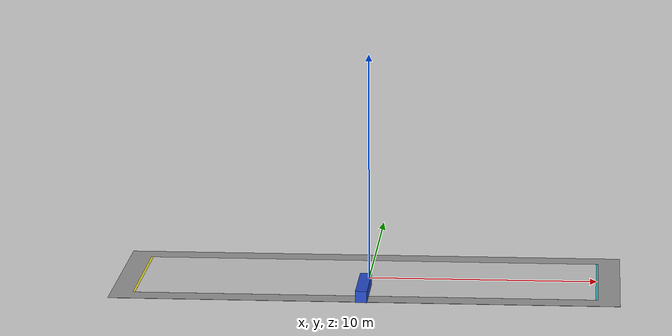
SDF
<?xml version="1.0" ?>
<sdf version="1.6">
  <world name="corredor">
    <!-- Plano de Fundo Cinza Claro com Margens -->
    <model name="corredor_fundo">
      <pose frame=''>0 0 0 0 0 0</pose>
      <static>true</static>
      <link name="corredor_link">
        <inertial>
          <mass>1</mass>
          <inertia>
            <ixx>0.1667</ixx>
            <ixy>0</ixy>
            <ixz>0</ixz>
            <iyy>0.1667</iyy>
            <iyz>0</iyz>
            <izz>0.1667</izz>
          </inertia>
        </inertial>
        <visual name="corredor_visual">
          <geometry>
            <box>
              <size>22 8 0.01</size>
            </box>
          </geometry>
          <material>
            <script>
              <uri>file://media/materials/scripts/gazebo.material</uri>
              <name>Gazebo/Gray</name>
            </script>
          </material>
        </visual>
        <collision name="corredor_collision">
          <geometry>
            <box>
              <size>22 8 0.01</size>
            </box>
          </geometry>
        </collision>
      </link>
    </model>

    <!-- Pista Central -->
    <model name="pista_central">
      <pose frame=''>0 0 0 0 0 0</pose>
      <static>true</static>
      <link name="pista_central_link">
        <inertial>
          <mass>1</mass>
          <inertia>
            <ixx>0.1667</ixx>
            <ixy>0</ixy>
            <ixz>0</ixz>
            <iyy>0.1667</iyy>
            <iyz>0</iyz>
            <izz>0.1667</izz>
          </inertia>
        </inertial>
        <visual name="pista_central_visual">
          <geometry>
            <box>
              <size>20 6 0.012</size>
            </box>
          </geometry>
          <material>
            <script>
              <uri>file://media/materials/scripts/gazebo.material</uri>
              <name>Gazebo/LightGrey</name>
            </script>
          </material>
        </visual>
        <collision name="pista_central_collision">
          <geometry>
            <box>
              <size>20 6 0.01</size>
            </box>
          </geometry>
        </collision>
      </link>
    </model>

    <!-- Linha de Início -->
    <model name="linha_inicio">
      <pose frame=''>-10 0 0.005 0 0 0</pose>
      <static>true</static>
      <link name="linha_inicio_link">
        <inertial>
          <mass>1</mass>
          <inertia>
            <ixx>0.1667</ixx>
            <ixy>0</ixy>
            <ixz>0</ixz>
            <iyy>0.1667</iyy>
            <iyz>0</iyz>
            <izz>0.1667</izz>
          </inertia>
        </inertial>
        <visual name="linha_inicio_visual">
          <geometry>
            <box>
              <size>0.1 6 0.005</size>
            </box>
          </geometry>
          <material>
            <script>
              <uri>file://media/materials/scripts/gazebo.material</uri>
              <name>Gazebo/Yellow</name>
            </script>
          </material>
        </visual>
        <collision name="linha_inicio_collision">
          <geometry>
            <box>
              <size>0.1 6 0.005</size>
            </box>
          </geometry>
        </collision>
      </link>
    </model>

    <!-- Linha de Fim -->
    <model name="linha_fim">
      <pose frame=''>10 0 0.005 0 0 0</pose>
      <static>true</static>
      <link name="linha_fim_link">
        <inertial>
          <mass>1</mass>
          <inertia>
            <ixx>0.1667</ixx>
            <ixy>0</ixy>
            <ixz>0</ixz>
            <iyy>0.1667</iyy>
            <iyz>0</iyz>
            <izz>0.1667</izz>
          </inertia>
        </inertial>
        <visual name="linha_fim_visual">
          <geometry>
            <box>
              <size>0.1 6 0.005</size>
            </box>
          </geometry>
          <material>
            <script>
              <uri>file://media/materials/scripts/gazebo.material</uri>
              <name>Gazebo/Cyan</name>
            </script>
          </material>
        </visual>
        <collision name="linha_fim_collision">
          <geometry>
            <box>
              <size>0.1 6 0.005</size>
            </box>
          </geometry>
        </collision>
      </link>
    </model>

    <!-- Caixa na lateral esquerda da pista -->
<model name="caixa_lateral_esquerda">
  <pose frame=''>0 -3.5 0.5 0 0 0</pose> <!-- Posição: centro da pista, lateral esquerda -->
  <static>true</static>
  <link name="caixa_link">
    <inertial>
      <mass>1</mass>
      <inertia>
        <ixx>0.1667</ixx>
        <ixy>0</ixy>
        <ixz>0</ixz>
        <iyy>0.1667</iyy>
        <iyz>0</iyz>
        <izz>0.1667</izz>
      </inertia>
    </inertial>
    <visual name="caixa_visual">
      <geometry>
        <box>
          <size>0.5 3 0.5</size> <!-- Dimensões: comprimento x largura x altura -->
        </box>
      </geometry>
      <material>
        <script>
          <uri>file://media/materials/scripts/gazebo.material</uri>
          <name>Gazebo/Blue</name> <!-- Cor azul para visualização clara -->
        </script>
      </material>
    </visual>
    <collision name="caixa_collision">
      <geometry>
        <box>
          <size>0.5 3 0.5</size> <!-- Dimensões: comprimento x largura x altura -->
        </box>
      </geometry>
    </collision>
  </link>
</model>

  </world>
</sdf>
